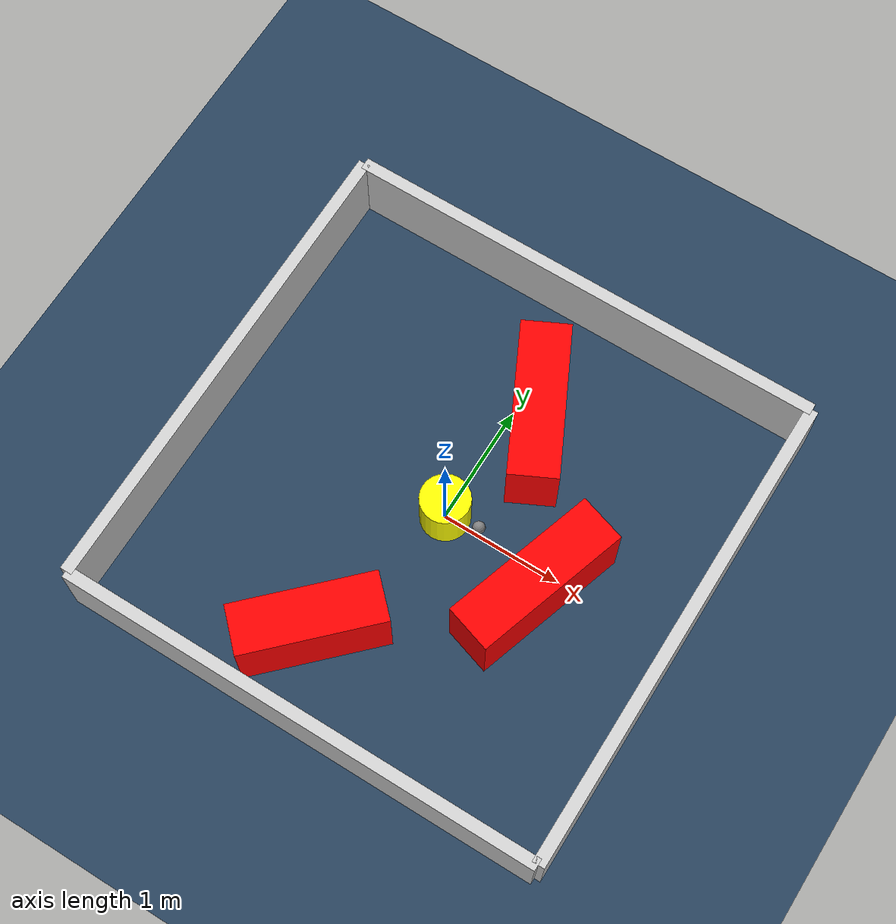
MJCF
<?xml version="1.0" ?>
<mujoco model="generated_environment">
  <option timestep="0.01" integrator="RK4" cone="elliptic"/>
  <default>
    <geom density="1"/>
  </default>
  <asset>
    <texture builtin="gradient" height="3072" rgb1="0.3 0.5 0.7" rgb2="0 0 0" type="skybox" width="512"/>
    <texture builtin="checker" height="300" mark="edge" markrgb="0.8 0.8 0.8" name="groundplane" rgb1="0.2 0.3 0.4" rgb2="0.1 0.2 0.3" type="2d" width="300"/>
    <material name="groundplane" reflectance="0.2" texrepeat="5 5" texture="groundplane" texuniform="true"/>
    <material name="robot" rgba="0.0 1.0 0.0 1"/>
  </asset>
  <worldbody>
    <light dir="0 0 -1" directional="true" pos="0 0 1.5"/>
    <geom condim="4" friction="1.0 0.005 0.001" material="groundplane" name="floor" size="0 0 0.05" type="plane"/>
    <body name="walls">
      <geom name="wall_1" condim="4" pos="-2.0 0.0 0.3" rgba="0.800000011920929 0.800000011920929 0.800000011920929 1.0" size="0.05 2.0 0.3" type="box"/>
      <geom name="wall_2" condim="4" pos="2.0 0.0 0.3" rgba="0.800000011920929 0.800000011920929 0.800000011920929 1.0" size="0.05 2.0 0.3" type="box"/>
      <geom name="wall_3" condim="4" pos="0.0 -2.0 0.3" rgba="0.800000011920929 0.800000011920929 0.800000011920929 1.0" size="2.0 0.05 0.3" type="box"/>
      <geom name="wall_4" condim="4" pos="0.0 2.0 0.3" rgba="0.800000011920929 0.800000011920929 0.800000011920929 1.0" size="2.0 0.05 0.3" type="box"/>
    </body>
    <body name="robot">
      <joint name="joint_x" type="slide" pos="0 0 0" axis="1 0 0"/>
      <joint name="joint_y" type="slide" pos="0 0 0" axis="0 1 0"/>
      <geom name="robot" type="sphere" pos="0.3 0.0 0.2" size="0.05" mass="5." friction="1.0 0.005 0.0001" condim="4" rgba="0.5 0.5 0.5 1.0"/>
      <site name="sensor_ball"/>
    </body>
    <body name="obstacle_movable_1">
      <geom name="obstacle_movable_1" condim="4" pos="0.0 0.0 0.2" euler="0 0 0.0" friction="1.0 0.005 0.001" rgba="1.0 1.0 0.0 1.0" size="0.2 0.2 0.0" type="cylinder" mass="0.1"/>
      <joint type="free"/>
    </body>
    <body name="obstacle_2_static">
      <geom name="obstacle_2_static" condim="4" pos="0.21598080943213116 0.9994791882269414 0.3" euler="0 0 116.3428817947327" friction="1.0 0.005 0.001" rgba="1 0 0 1" size="0.6358053648020059 0.2 0.3" type="box"/>
    </body>
    <body name="obstacle_3_static">
      <geom name="obstacle_3_static" condim="4" pos="-0.34103540162787627 -1.333821527117344 0.3" euler="0 0 45.22552486693499" friction="1.0 0.005 0.001" rgba="1 0 0 1" size="0.5731460150543461 0.2 0.3" type="box"/>
    </body>
    <body name="obstacle_4_static">
      <geom name="obstacle_4_static" condim="4" pos="0.9022494508831043 -0.20124994368187687 0.3" euler="0 0 72.34367733342961" friction="1.0 0.005 0.001" rgba="1 0 0 1" size="0.6565593866348423 0.2 0.3" type="box"/>
    </body>
  </worldbody>
  <actuator>
    <motor name="actuator_x" joint="joint_x" gear="1" ctrlrange="-1 1"/>
    <motor name="actuator_y" joint="joint_y" gear="1" ctrlrange="-1 1"/>
  </actuator>
</mujoco>
